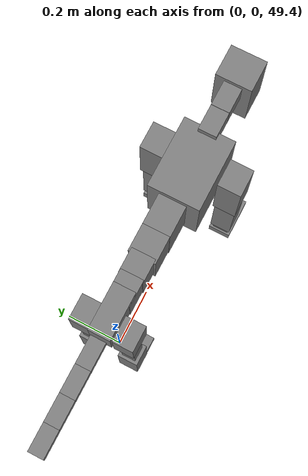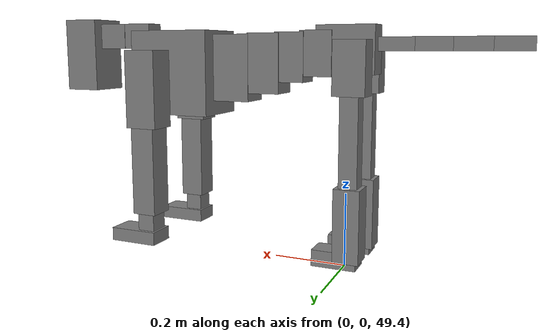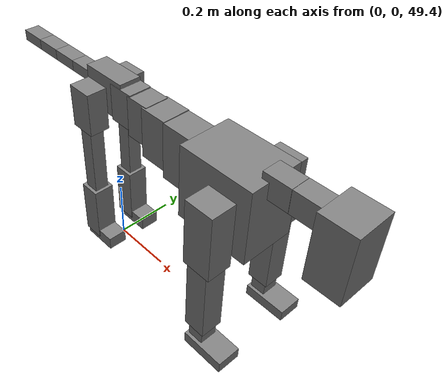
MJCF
<mujoco model="dog">

    <default>
        <joint armature="0.02" stiffness="1" damping="0.2" limited="true"/>
        <geom condim="3" friction="1 0.05 0.05" margin="0.01"/>
        <motor ctrllimited="true" ctrlrange="-1.0 1.0" forcelimited="true" gear="50"/>
    </default>

    <compiler inertiafromgeom="true" angle="radian"/>

    <option timestep="0.016" iterations="50" tolerance="1e-10" solver="Newton" jacobian="dense" cone="pyramidal"/>

    <size nconmax="20000" njmax="60000" nstack="5000000"/>
    <visual>
        <map force="0.1" zfar="30"/>
        <rgba haze="0.15 0.25 0.35 1"/>
        <quality shadowsize="2048"/>
        <global offwidth="800" offheight="800"/>
    </visual>

    <asset>
        <texture type="skybox" builtin="gradient" rgb1="0.3 0.5 0.7" rgb2="0 0 0" width="512" height="512"/>
        <texture name="texplane" type="2d" builtin="checker" rgb1=".2 .3 .4" rgb2=".1 0.15 0.2" width="512" height="512"
                 mark="cross" markrgb=".8 .8 .8"/>
        <texture name="texgeom" type="cube" builtin="flat" mark="cross" width="127" height="1278" rgb1="0.8 0.6 0.4"
                 rgb2="0.8 0.6 0.4" markrgb="1 1 1" random="0.01"/>

        <material name="matplane" reflectance="0.3" texture="texplane" texrepeat="1 1" texuniform="true"/>
        <material name="matgeom" texture="texgeom" texuniform="true" rgba="0.8 0.6 .4 1"/>
    </asset>

    <worldbody>
        <geom name="floor" pos="0 0 0" size="0 0 .25" type="plane" material="matplane" condim="3"/>

        <light directional="false" diffuse=".2 .2 .2" specular="0 0 0" pos="0 0 5" dir="0 0 -1" castshadow="false"/>
        <light mode="targetbodycom" target="torso" directional="false" diffuse=".8 .8 .8" specular="0.3 0.3 0.3"
               pos="0 0 4.0" dir="0 0 -1"/>

        <body name="root" pos="0 0 50">
            <freejoint name="root_1"/>
            <geom type="box" pos="0 0 -0.02" size="0.0774  0.0358  0.063" density="2030"/>

            <body name="spine1" pos="0.054 0 0">
                <joint name="spine1_y" axis="0 1 0" range="0 0.7" limited="true"/>
                <geom type="box" pos="0.02375 0 -0.03" size="0.04375  0.0375  0.05985" density="2030"/>

                <body name="spine2" pos="0.0612 0 0">
                    <joint name="spine2_y" axis="0 1 0" range="-0.15 0.15" limited="true"/>
                    <geom type="box" pos="0.03555  0  -0.04" size="0.04055  0.039  0.06615" density="2030"/>

                    <body name="spine3" pos="0.0730 0 0">
                        <joint name="spine3_y" axis="0 1 0" range="-0.15 0.15" limited="true"/>
                        <geom type="box" pos="0.03555  0  -0.057" size="0.04555  0.0445  0.081" density="2030"/>

                        <body name="spine4" pos="0.0780 0 0">
                            <joint name="spine4_y" axis="0 1 0" range="-0.15 0.15" limited="true"/>
                            <geom type="box" pos="0.05265  0  -0.07" size="0.05265  0.045  0.09135" density="2030"/>

                            <body name="torso" pos="0.1082 0 0">
                                <joint name="torso_y" axis="0 1 0" range="-0.15 0.15" limited="true"/>
                                <geom type="box" pos="0.11925  0  -0.085" size="0.11925  0.085  0.11745"
                                      density="2030"/>

                                <body name="neck1" pos="0.2160  0   0.0180">
                                    <joint name="neck1_y" axis="0 1 0" range="-1.2  -1" limited="true"/>
                                    <geom type="box" pos="0.0423  0  0" size="0.0423  0.03  0.036" density="2325"/>

                                    <body name="neck2" pos="0.0853  0  0">
                                        <joint name="neck2_y" axis="0 1 0" range="0.1  0" limited="true"/>
                                        <geom type="box" pos="0.0423  0  0" size="0.0423  0.03  0.036" density="2325"/>

                                        <body name="head" pos="0.0853  0  0">
                                            <joint name="head_y" axis="0 1 0" range="-0.3  -0.2" limited="true"/>
                                            <geom type="box" pos="0.0531  0  -0.055" size="0.0531  0.06  0.1044"
                                                  density="4030"/>

                                        </body>
                                    </body>
                                </body>

                                <body name="front_shoulder" pos="0.156  0   -0.0480">
                                    <joint name="front_shoulder_y" axis="0 1 0" range="-1 1.5" limited="true"/>
                                    <geom type="box" pos="0 0.13 -0.0795" size="0.0455  0.0389  0.1061" density="1158"/>
                                    <geom type="box" pos="0 -0.13 -0.0795" size="0.0455  0.0389  0.1061"
                                          density="1158"/>

                                    <body name="front_elbow" pos="0  0  -0.1590">
                                        <joint name="front_elbow_y" axis="0 1 0" range="-2 0" limited="true"/>
                                        <geom type="box" pos="0 0.13 -0.1339" size="0.0343  0.0351  0.1339"
                                              density="1081"/>
                                        <geom type="box" pos="0 -0.13 -0.1339" size="0.0343  0.0351  0.1339"
                                              density="1081"/>

                                        <body name="front_wrist" pos="0  0  -0.2679">
                                            <joint name="front_wrist_y" axis="0 1 0" range="-0.2 0" limited="true"/>
                                            <geom type="box" pos="0 0.13 -0.0315" size="0.0246  0.0274  0.0446"
                                                  density="1664"/>
                                            <geom type="box" pos="0 -0.13 -0.0315" size="0.0246  0.0274  0.0446"
                                                  density="1664"/>

                                            <body name="front_finger_end" pos="0  0  -0.0630">
                                                <joint name="front_finger_y" axis="0 1 0" range="-0.4 1"
                                                       limited="true"/>
                                                <geom type="box" pos="0.0378  0.13  -0.0033"
                                                      size="0.0692  0.0378  0.0183" density="1515"/>
                                                <geom type="box" pos="0.0378  -0.13  -0.0033"
                                                      size="0.0692  0.0378  0.0183" density="1515"/>

                                            </body>

                                        </body>
                                    </body>
                                </body>

                            </body>
                        </body>
                    </body>
                </body>
            </body>

            <body name="back_hip" pos="-0.03 0 -0.018">
                <joint name="back_hip_y" axis="0 1 0" range="-1.5 0.3" limited="true"/>
                <geom type="box" pos="0 0.07 -0.0468" size="0.0419  0.0329  0.0696" density="1154"/>
                <geom type="box" pos="0 -0.07 -0.0468" size="0.0419  0.0329  0.0696" density="1154"/>

                <body name="back_knee" pos="0  0  -0.0936">
                    <joint name="back_knee_y" axis="0 1 0" range="0 2.8" limited="true"/>
                    <geom type="box" pos="0 0.07 -0.1326" size="0.0240  0.0236  0.1482" density="1227"/>
                    <geom type="box" pos="0 -0.07 -0.1326" size="0.0240  0.0236  0.1482" density="1227"/>

                    <body name="back_ankle" pos="0  0  -0.2653">
                        <joint name="back_ankle_y" axis="0 1 0" range="-2.2 0" limited="true"/>
                        <geom type="box" pos="0 0.07 -0.0846" size="0.0343  0.0343  0.0958" density="1284"/>
                        <geom type="box" pos="0 -0.07 -0.0846" size="0.0343  0.0343  0.0958" density="1284"/>

                        <body name="back_toe_end" pos="0  0  -0.1692">
                            <joint name="back_toe_y" axis="0 1 0" range="-0.4 1" limited="true"/>
                            <geom type="box" pos="0.0320  0.07  -0.0067" size="0.0586  0.0320  0.0217" density="1515"/>
                            <geom type="box" pos="0.0320  -0.07  -0.0067" size="0.0586  0.0320  0.0217" density="1515"/>

                        </body>
                    </body>
                </body>
            </body>

            <body name="tail1" pos="-0.074 0 -0.006">
                <joint name="tail1_y" axis="0 1 0" range="-0.2 0.2" limited="true"/>
                <geom type="box" pos="-0.0536  0  0" size="0.045  0.025  0.0175" density="1587"/>

                <body name="tail2" pos="-0.09 0 0">
                    <joint name="tail2_y" axis="0 1 0" range="-0.2 0.2" limited="true"/>
                    <geom type="box" pos="-0.0536  0  0" size="0.045  0.025  0.0175" density="1587"/>

                    <body name="tail3" pos="-0.09 0 0">
                        <joint name="tail3_y" axis="0 1 0" range="-0.2 0.2" limited="true"/>
                        <geom type="box" pos="-0.0536  0  0" size="0.045  0.025  0.0175" density="1587"/>

                        <body name="tail4" pos="-0.09 0 0">
                            <joint name="tail4_y" axis="0 1 0" range="-0.2 0.2" limited="true"/>
                            <geom type="box" pos="-0.0536  0  0" size="0.045  0.025  0.0175" density="1587"/>

                        </body>
                    </body>
                </body>
            </body>
        </body>
    </worldbody>

    <actuator>
        <motor joint="spine1_y" forcerange="-150 150     "/>
        <motor joint="spine2_y" forcerange="-150 150     "/>
        <motor joint="spine3_y" forcerange="-150 150     "/>
        <motor joint="spine4_y" forcerange="-150 150     "/>
        <motor joint="torso_y" forcerange="-150 150     "/>
        <motor joint="neck1_y" forcerange="-100 100       "/>
        <motor joint="neck2_y" forcerange="-100 100       "/>
        <motor joint="head_y" forcerange="-150 150       "/>
        <motor joint="front_shoulder_y" forcerange="-191.21 168.09"/>
        <motor joint="front_elbow_y" forcerange="-192.12 162.87"/>
        <motor joint="front_wrist_y" forcerange="-136.28 82.61"/>
        <motor joint="front_finger_y" forcerange="-85.80 75.57"/>
        <motor joint="back_hip_y" forcerange="-242.07 396.03"/>
        <motor joint="back_knee_y" forcerange="-246.59 297.25"/>
        <motor joint="back_angle_y" forcerange="-223.96 225.30"/>
        <motor joint="back_toe_y" forcerange="-78.09 97.54"/>
        <motor joint="tail1_y" forcerange="-50 50     "/>
        <motor joint="tail2_y" forcerange="-50 50     "/>
        <motor joint="tail3_y" forcerange="-50 50     "/>
        <motor joint="tail4_y" forcerange="-50 50     "/>
    </actuator>
</mujoco>
